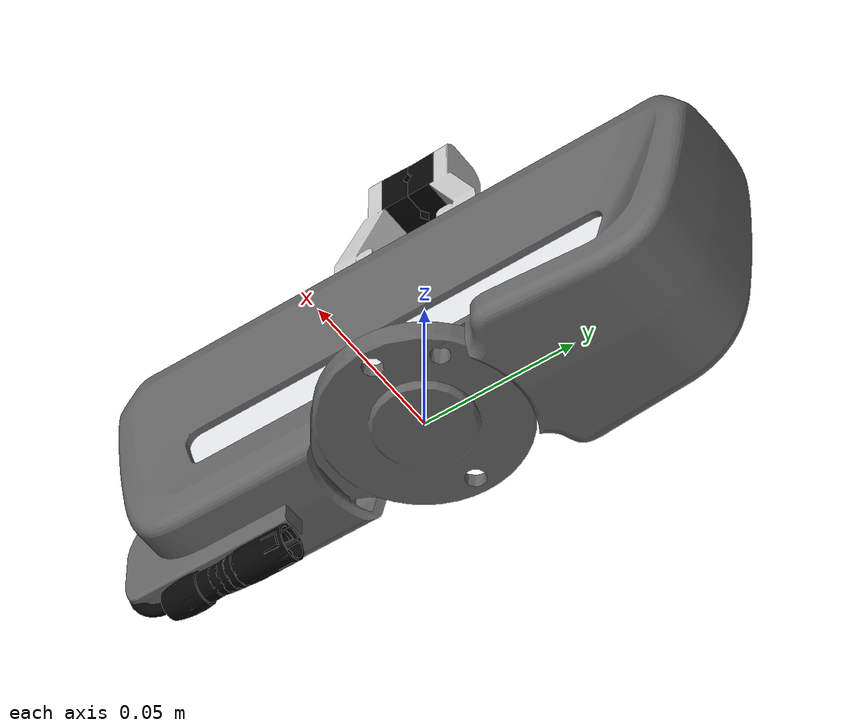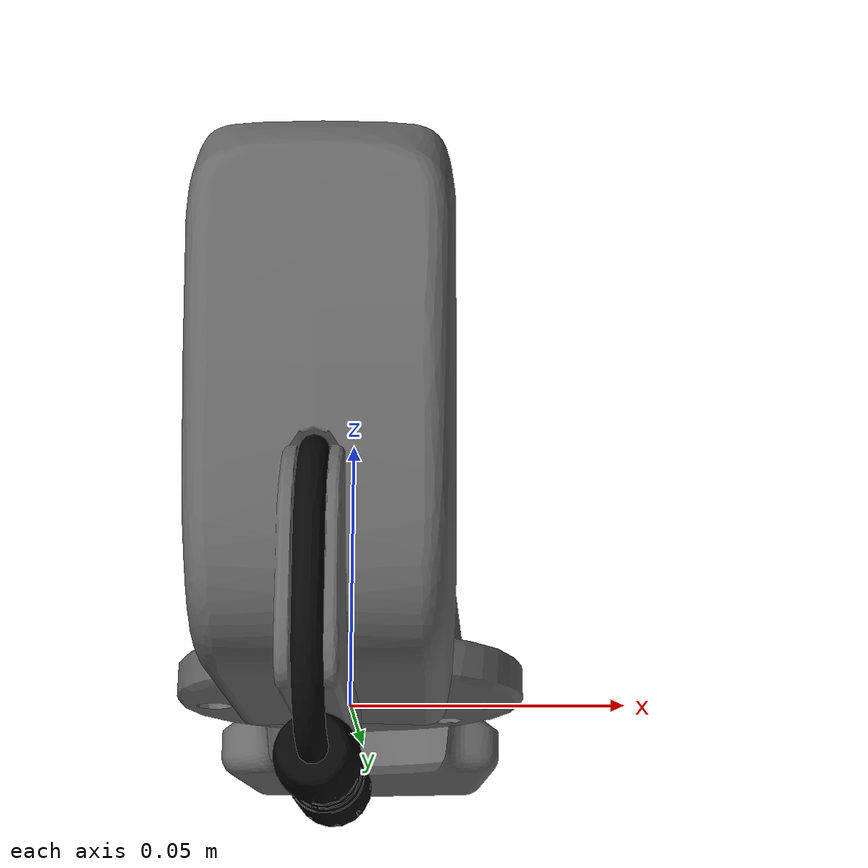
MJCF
<mujoco model="panda_gripper">
  <compiler angle="radian" autolimits="true" />
  <option gravity="0 0 0" timestep="0.001" />
  <visual>
    <global offwidth="3840" offheight="2160" />
  </visual>
  <asset>
    <mesh name="hand_visual000" content_type="model/obj" file="meshes/visual/hand_visual000.obj" />
    <mesh name="hand_visual001" content_type="model/obj" file="meshes/visual/hand_visual001.obj" />
    <mesh name="hand_visual002" content_type="model/obj" file="meshes/visual/hand_visual002.obj" />
    <mesh name="hand_visual003" content_type="model/obj" file="meshes/visual/hand_visual003.obj" />
    <mesh name="hand_visual004" content_type="model/obj" file="meshes/visual/hand_visual004.obj" />
    <mesh name="finger_visual000" content_type="model/obj" file="meshes/visual/finger_visual000.obj" />
    <mesh name="finger_visual001" content_type="model/obj" file="meshes/visual/finger_visual001.obj" />
    <material name="hand_visual000_material" rgba="0.90196078 0.92156863 0.92941176 1" />
    <material name="hand_visual001_material" rgba="0.02745098 0.02745098 0.02745098 1" />
    <material name="hand_visual002_material" rgba="0.02745098 0.02745098 0.02745098 1" />
    <material name="hand_visual003_material" rgba="0.40000000 0.40000000 0.40000000 1" />
    <material name="hand_visual004_material" rgba="0.40000000 0.40000000 0.40000000 1" />
    <material name="finger_visual000_material" rgba="0.80000000 0.80000000 0.80000000 1" />
    <material name="finger_visual001_material" rgba="0.02745098 0.02745098 0.02745098 1" />
    <texture type="skybox" builtin="gradient" rgb1="1 1 1" rgb2="1 1 1" width="32" height="512" />
  </asset>
  <worldbody>
    <light pos="0 0 5" dir="0 0 -1" directional="true" />
    <body name="hand_root">
      <body name="panda_hand">
        <inertial pos="-0.01 0 0.03" quat="0.5 0.5 0.5 0.5" mass="0.73" diaginertia="0.0025 0.0017 0.001" />
        <geom name="panda_hand_hand_visual000" type="mesh" contype="0" conaffinity="0" group="1" density="0" mesh="hand_visual000" material="hand_visual000_material" />
        <geom name="panda_hand_hand_visual001" type="mesh" contype="0" conaffinity="0" group="1" density="0" mesh="hand_visual001" material="hand_visual001_material" />
        <geom name="panda_hand_hand_visual002" type="mesh" contype="0" conaffinity="0" group="1" density="0" mesh="hand_visual002" material="hand_visual002_material" />
        <geom name="panda_hand_hand_visual003" type="mesh" contype="0" conaffinity="0" group="1" density="0" mesh="hand_visual003" material="hand_visual003_material" />
        <geom name="panda_hand_hand_visual004" type="mesh" contype="0" conaffinity="0" group="1" density="0" mesh="hand_visual004" material="hand_visual004_material" />
        <geom size="0.018 0.04 0.1" pos="0 0 0.02617" quat="0.707107 0.707106 0 0" type="box" group="3" />
        <geom size="0.03 0.00385" pos="0 0 0.0003" type="cylinder" group="3" />
        <body name="panda_hand_tcp" pos="0 0 0.1034" />
        <body name="panda_leftfinger" pos="0 0 0.0584">
          <inertial pos="0 0 0" mass="0.015" diaginertia="2.375e-06 2.375e-06 7.5e-07" />
          <joint name="panda_finger_joint1" pos="0 0 0" axis="0 1 0" type="slide" range="0 0.04" actuatorfrcrange="-100 100" damping="0.1" armature="0.0002" frictionloss="0.0" />
          <geom name="panda_leftfinger_finger_visual000" type="mesh" contype="0" conaffinity="0" group="1" density="0" mesh="finger_visual000" material="finger_visual000_material" />
          <geom name="panda_leftfinger_finger_visual001" type="mesh" contype="0" conaffinity="0" group="1" density="0" mesh="finger_visual001" material="finger_visual001_material" />
          <geom size="0.011 0.0075 0.01" pos="0 0.0185 0.011" type="box" group="3" />
          <geom size="0.011 0.0044 0.0019" pos="0 0.0068 0.0022" type="box" group="3" />
          <geom size="0.00875 0.0035 0.01175" pos="0 0.0159 0.02835" quat="0.965926 0.258819 0 0" type="box" group="3" />
          <geom size="0.00875 0.0076 0.00925" pos="0 0.00758 0.04525" type="box" group="3" />
        </body>
        <body name="panda_rightfinger" pos="0 0 0.0584">
          <inertial pos="0 0 0" mass="0.015" diaginertia="2.375e-06 2.375e-06 7.5e-07" />
          <joint name="panda_finger_joint2" pos="0 0 0" axis="0 -1 0" type="slide" range="0 0.04" actuatorfrcrange="-100 100" damping="0.0" armature="0.0" frictionloss="0.0" />
          <geom name="panda_rightfinger_finger_visual000" quat="0 0 0 1" type="mesh" contype="0" conaffinity="0" group="1" density="0" mesh="finger_visual000" material="finger_visual000_material" />
          <geom name="panda_rightfinger_finger_visual001" quat="0 0 0 1" type="mesh" contype="0" conaffinity="0" group="1" density="0" mesh="finger_visual001" material="finger_visual001_material" />
          <geom size="0.011 0.0075 0.01" pos="0 -0.0185 0.011" type="box" group="3" />
          <geom size="0.011 0.0044 0.0019" pos="0 -0.0068 0.0022" type="box" group="3" />
          <geom size="0.00875 0.0035 0.01175" pos="0 -0.0159 0.02835" quat="0.965926 -0.258819 0 0" type="box" group="3" />
          <geom size="0.00875 0.0076 0.00925" pos="0 -0.00758 0.04525" type="box" group="3" />
        </body>
      </body>
    </body>
  </worldbody>
  <contact>
    <exclude name="ex_panda_hand_panda_hand_tcp" body1="panda_hand" body2="panda_hand_tcp" />
    <exclude name="ex_panda_hand_panda_leftfinger" body1="panda_hand" body2="panda_leftfinger" />
    <exclude name="ex_panda_hand_panda_rightfinger" body1="panda_hand" body2="panda_rightfinger" />
  </contact>
  <equality>
    <joint name="panda_finger_joint2_mimic" joint1="panda_finger_joint2" joint2="panda_finger_joint1" polycoef="0 1 0 0 0" solref="0.002 1" solimp="0.9 0.99 0.001" />
  </equality>
  <actuator>
    <position name="panda_finger_joint1_actuator" joint="panda_finger_joint1" kp="1" forcerange="-1 1" ctrlrange="0.0 0.04" />
  </actuator>
</mujoco>
